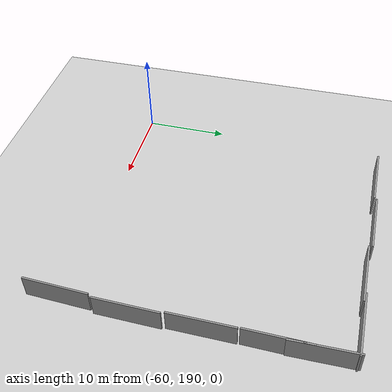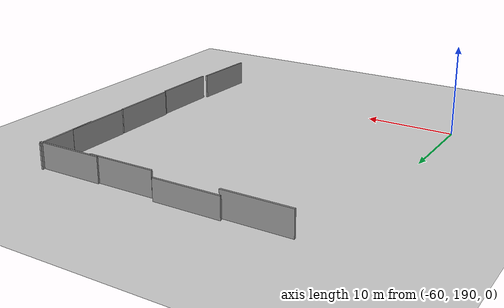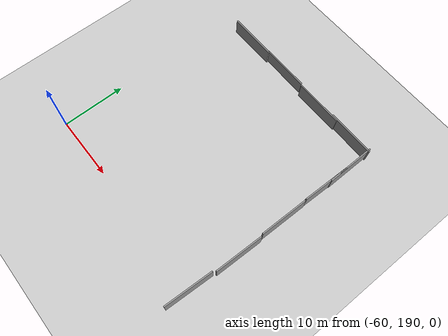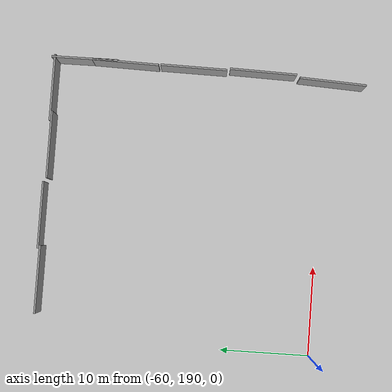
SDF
<sdf version="1.4">
 <world name="default">
  <model name="ground_plane">
   <static>1</static>
   <link name="link">
    <collision name="collision">
     <geometry><plane><normal>0 0 1</normal><size>100 100</size></plane></geometry>
     <surface><friction><ode><mu>100</mu><mu2>50</mu2></ode></friction></surface>
    </collision>
    <visual name="visual">
     <cast_shadows>0</cast_shadows>
     <geometry><plane><normal>0 0 1</normal><size>100 100</size></plane></geometry>
     <material>
      <script><uri>file://media/materials/scripts/gazebo.material</uri><name>Gazebo/Grey</name></script>
     </material>
    </visual>
    <velocity_decay><linear>0</linear><angular>0</angular></velocity_decay>
   </link>
  </model>
  <model name="grey_wall_18">
   <static>1</static>
   <link name="link">
    <pose>0 0 1.4 0 -0 0</pose>
    <collision name="collision"><geometry><box><size>7.5 0.2 2.8</size></box></geometry></collision>
    <visual name="visual">
     <cast_shadows>0</cast_shadows>
     <geometry><box><size>7.5 0.2 2.8</size></box></geometry>
     <material>
      <script>
       <uri>model://grey_wall/materials/scripts</uri>
       <uri>model://grey_wall/materials/textures</uri>
       <name>vrc/grey_wall</name>
      </script>
     </material>
    </visual>
    <velocity_decay><linear>0</linear><angular>0</angular></velocity_decay>
   </link>
   <pose>-28.5389 205.136 0 0 0 -1.5832</pose>
  </model>
  <model name="grey_wall_19">
   <static>1</static>
   <link name="link">
    <pose>0 0 1.4 0 -0 0</pose>
    <collision name="collision"><geometry><box><size>7.5 0.2 2.8</size></box></geometry></collision>
    <visual name="visual">
     <cast_shadows>0</cast_shadows>
     <geometry><box><size>7.5 0.2 2.8</size></box></geometry>
     <material>
      <script>
       <uri>model://grey_wall/materials/scripts</uri>
       <uri>model://grey_wall/materials/textures</uri>
       <name>vrc/grey_wall</name>
      </script>
     </material>
    </visual>
    <velocity_decay><linear>0</linear><angular>0</angular></velocity_decay>
   </link>
   <pose>-28.496 197.316 0 0 0 -1.59459</pose>
  </model>
  <model name="grey_wall_20">
   <static>1</static>
   <link name="link">
    <pose>0 0 1.4 0 -0 0</pose>
    <collision name="collision"><geometry><box><size>7.5 0.2 2.8</size></box></geometry></collision>
    <visual name="visual">
     <cast_shadows>0</cast_shadows>
     <geometry><box><size>7.5 0.2 2.8</size></box></geometry>
     <material>
      <script>
       <uri>model://grey_wall/materials/scripts</uri>
       <uri>model://grey_wall/materials/textures</uri>
       <name>vrc/grey_wall</name>
      </script>
     </material>
    </visual>
    <velocity_decay><linear>0</linear><angular>0</angular></velocity_decay>
   </link>
   <pose>-29.065 189.456 0 0 0 -1.61877</pose>
  </model>
  <model name="grey_wall_43">
   <static>1</static>
   <link name="link">
    <pose>0 0 1.4 0 -0 0</pose>
    <collision name="collision"><geometry><box><size>7.5 0.2 2.8</size></box></geometry></collision>
    <visual name="visual">
     <cast_shadows>0</cast_shadows>
     <geometry><box><size>7.5 0.2 2.8</size></box></geometry>
     <material>
      <script>
       <uri>model://grey_wall/materials/scripts</uri>
       <uri>model://grey_wall/materials/textures</uri>
       <name>vrc/grey_wall</name>
      </script>
     </material>
    </visual>
    <velocity_decay><linear>0</linear><angular>0</angular></velocity_decay>
   </link>
   <pose>-53.3455 220.702 0 0 -0 0</pose>
  </model>
  <model name="grey_wall_44">
   <static>1</static>
   <link name="link">
    <pose>0 0 1.4 0 -0 0</pose>
    <collision name="collision"><geometry><box><size>7.5 0.2 2.8</size></box></geometry></collision>
    <visual name="visual">
     <cast_shadows>0</cast_shadows>
     <geometry><box><size>7.5 0.2 2.8</size></box></geometry>
     <material>
      <script>
       <uri>model://grey_wall/materials/scripts</uri>
       <uri>model://grey_wall/materials/textures</uri>
       <name>vrc/grey_wall</name>
      </script>
     </material>
    </visual>
    <velocity_decay><linear>0</linear><angular>0</angular></velocity_decay>
   </link>
   <pose>-46.1884 221.037 -0.462886 0 -0 0</pose>
  </model>
  <model name="grey_wall_45">
   <static>1</static>
   <link name="link">
    <pose>0 0 1.4 0 -0 0</pose>
    <collision name="collision"><geometry><box><size>7.5 0.2 2.8</size></box></geometry></collision>
    <visual name="visual">
     <cast_shadows>0</cast_shadows>
     <geometry><box><size>7.5 0.2 2.8</size></box></geometry>
     <material>
      <script>
       <uri>model://grey_wall/materials/scripts</uri>
       <uri>model://grey_wall/materials/textures</uri>
       <name>vrc/grey_wall</name>
      </script>
     </material>
    </visual>
    <velocity_decay><linear>0</linear><angular>0</angular></velocity_decay>
   </link>
   <pose>-38.313 220.604 0 0 -0 0</pose>
  </model>
  <model name="grey_wall_49">
   <static>1</static>
   <link name="link">
    <pose>0 0 1.4 0 -0 0</pose>
    <collision name="collision"><geometry><box><size>7.5 0.2 2.8</size></box></geometry></collision>
    <visual name="visual">
     <cast_shadows>0</cast_shadows>
     <geometry><box><size>7.5 0.2 2.8</size></box></geometry>
     <material>
      <script>
       <uri>model://grey_wall/materials/scripts</uri>
       <uri>model://grey_wall/materials/textures</uri>
       <name>vrc/grey_wall</name>
      </script>
     </material>
    </visual>
    <velocity_decay><linear>0</linear><angular>0</angular></velocity_decay>
   </link>
   <pose>-31.8845 220.774 0 0 -0 0</pose>
  </model>
  <model name="grey_wall_132">
   <static>1</static>
   <link name="link">
    <pose>0 0 1.4 0 -0 0</pose>
    <collision name="collision"><geometry><box><size>7.5 0.2 2.8</size></box></geometry></collision>
    <visual name="visual">
     <cast_shadows>0</cast_shadows>
     <geometry><box><size>7.5 0.2 2.8</size></box></geometry>
     <material>
      <script>
       <uri>model://grey_wall/materials/scripts</uri>
       <uri>model://grey_wall/materials/textures</uri>
       <name>vrc/grey_wall</name>
      </script>
     </material>
    </visual>
    <velocity_decay><linear>0</linear><angular>0</angular></velocity_decay>
   </link>
   <pose>-28.4668 212.838 -0 0 -0 1.54919</pose>
  </model>
  <model name="grey_wall_133">
   <static>1</static>
   <link name="link">
    <pose>0 0 1.4 0 -0 0</pose>
    <collision name="collision"><geometry><box><size>7.5 0.2 2.8</size></box></geometry></collision>
    <visual name="visual">
     <cast_shadows>0</cast_shadows>
     <geometry><box><size>7.5 0.2 2.8</size></box></geometry>
     <material>
      <script>
       <uri>model://grey_wall/materials/scripts</uri>
       <uri>model://grey_wall/materials/textures</uri>
       <name>vrc/grey_wall</name>
      </script>
     </material>
    </visual>
    <velocity_decay><linear>0</linear><angular>0</angular></velocity_decay>
   </link>
   <pose>-28.3864 217.38 0 0 0 -1.5634</pose>
  </model>
 </world>
</sdf>
